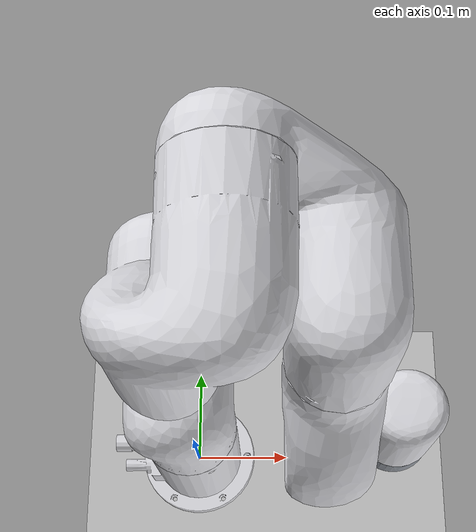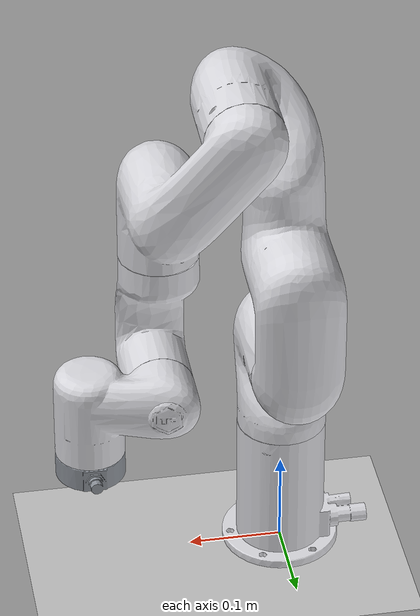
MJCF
<?xml version='1.0' encoding='utf-8'?>
<mujoco model="xarm6_arm_test">
  <compiler angle="radian" autolimits="true" meshdir="../../../third_party/xarm_ros2/xarm_description/meshes/xarm6/visual" />
  <option timestep="0.002" gravity="0 0 -9.81" integrator="implicitfast" />
  <visual>
    <global azimuth="135" elevation="-20" />
    <headlight ambient="0.35 0.35 0.35" diffuse="0.6 0.6 0.6" specular="0.2 0.2 0.2" />
  </visual>
  <default>
    <joint damping="1.0" armature="0.01" />
    <geom contype="0" conaffinity="0" group="2" />
  </default>
  <asset>
    <material name="robot_white" rgba="0.86 0.86 0.88 1" />
    <material name="robot_silver" rgba="0.55 0.57 0.6 1" />
    <mesh name="link_base_mesh" file="link_base.stl" />
    <mesh name="link1_mesh" file="link1.stl" />
    <mesh name="link2_mesh" file="link2.stl" />
    <mesh name="link3_mesh" file="link3.stl" />
    <mesh name="link4_mesh" file="link4.stl" />
    <mesh name="link5_mesh" file="link5.stl" />
    <mesh name="link6_mesh" file="link6.stl" />
  </asset>
  <worldbody>
    <light name="main_light" pos="1 -1 2.5" dir="-0.3 0.3 -1" />
    <camera name="overview_camera" pos="1.4 -1.4 1.1" xyaxes="0.707 0.707 0 -0.36 0.36 0.86" fovy="50" />
    <geom name="floor" type="plane" size="2 2 0.1" rgba="0.75 0.75 0.75 1" contype="1" conaffinity="1" friction="1 0.01 0.001" />
    <body name="link_base" pos="0 0 0">
      <geom name="link_base_visual" type="mesh" mesh="link_base_mesh" material="robot_white" />
      <body name="link1" pos="0 0 0.267" euler="0 0 0">
        <joint name="joint1" type="hinge" axis="0 0 1" limited="true" range="-6.283185307 6.283185307" />
        <inertial pos="0.00022 0.02951 -0.0124" mass="2.3814" fullinertia="0.0058562 0.0050316 0.003536652 -1.79e-05 3.55e-06 -0.000888336" />
        <geom name="link1_visual" type="mesh" mesh="link1_mesh" material="robot_white" />
        <body name="link2" pos="0 0 0" euler="-1.5708 0 0">
          <joint name="joint2" type="hinge" axis="0 0 1" limited="true" range="-2.059 2.0944" />
          <inertial pos="0.03881 -0.22783 0.03496" mass="2.2675" fullinertia="0.028315776 0.0058 0.0273447 0.005 0.00066546 -0.0045741" />
          <geom name="link2_visual" type="mesh" mesh="link2_mesh" material="robot_white" />
          <body name="link3" pos="0.0535 -0.2845 0" euler="0 0 0">
            <joint name="joint3" type="hinge" axis="0 0 1" limited="true" range="-3.927 0.19198" />
            <inertial pos="0.07041 0.11631 0.0107" mass="1.875" fullinertia="0.0063483 0.00379758 0.00595768 -0.0015397 0.00096858 0.00186567" />
            <geom name="link3_visual" type="mesh" mesh="link3_mesh" material="robot_white" />
            <body name="link4" pos="0.0775 0.3425 0" euler="-1.5708 0 0">
              <joint name="joint4" type="hinge" axis="0 0 1" limited="true" range="-6.283185307 6.283185307" />
              <inertial pos="-0.00018 0.01798 -0.02291" mass="1.3192" fullinertia="0.004896 0.00445694 0.00134332 -6.925e-06 -1.418e-05 -0.00023186" />
              <geom name="link4_visual" type="mesh" mesh="link4_mesh" material="robot_white" />
              <body name="link5" pos="0 0 0" euler="1.5708 0 0">
                <joint name="joint5" type="hinge" axis="0 0 1" limited="true" range="-1.69297 3.141592654" />
                <inertial pos="0.0651 0.03096 0.00315" mass="1.33854" fullinertia="0.00146378 0.00184192 0.002333524 -0.000450624 0.000284306 0.000130866" />
                <geom name="link5_visual" type="mesh" mesh="link5_mesh" material="robot_white" />
                <body name="link6" pos="0.076 0.097 0" euler="-1.5708 0 0">
                  <joint name="joint6" type="hinge" axis="0 0 1" limited="true" range="-6.283185307 6.283185307" />
                  <inertial pos="0 -0.00677 -0.01098" mass="0.17" fullinertia="9.3e-05 5.87e-05 0.000132 -0 -0 -3.6e-06" />
                  <geom name="link6_visual" type="mesh" mesh="link6_mesh" material="robot_silver" />
                  <site name="end_effector_site" pos="0 0 0" size="0.01" rgba="1 0 0 1" />
                </body>
              </body>
            </body>
          </body>
        </body>
      </body>
    </body>
  </worldbody>
  <actuator>
    <position name="joint1_actuator" joint="joint1" kp="120" ctrlrange="-6.283185307 6.283185307" forcelimited="true" forcerange="-50 50" />
    <position name="joint2_actuator" joint="joint2" kp="120" ctrlrange="-2.059 2.0944" forcelimited="true" forcerange="-50 50" />
    <position name="joint3_actuator" joint="joint3" kp="100" ctrlrange="-3.927 0.19198" forcelimited="true" forcerange="-32 32" />
    <position name="joint4_actuator" joint="joint4" kp="70" ctrlrange="-6.283185307 6.283185307" forcelimited="true" forcerange="-32 32" />
    <position name="joint5_actuator" joint="joint5" kp="50" ctrlrange="-1.69297 3.141592654" forcelimited="true" forcerange="-32 32" />
    <position name="joint6_actuator" joint="joint6" kp="30" ctrlrange="-6.283185307 6.283185307" forcelimited="true" forcerange="-20 20" />
  </actuator>
  <keyframe>
    <key name="home" qpos="0 -0.6 -1.2 0 1.8 0" ctrl="0 -0.6 -1.2 0 1.8 0" />
  </keyframe>
</mujoco>
